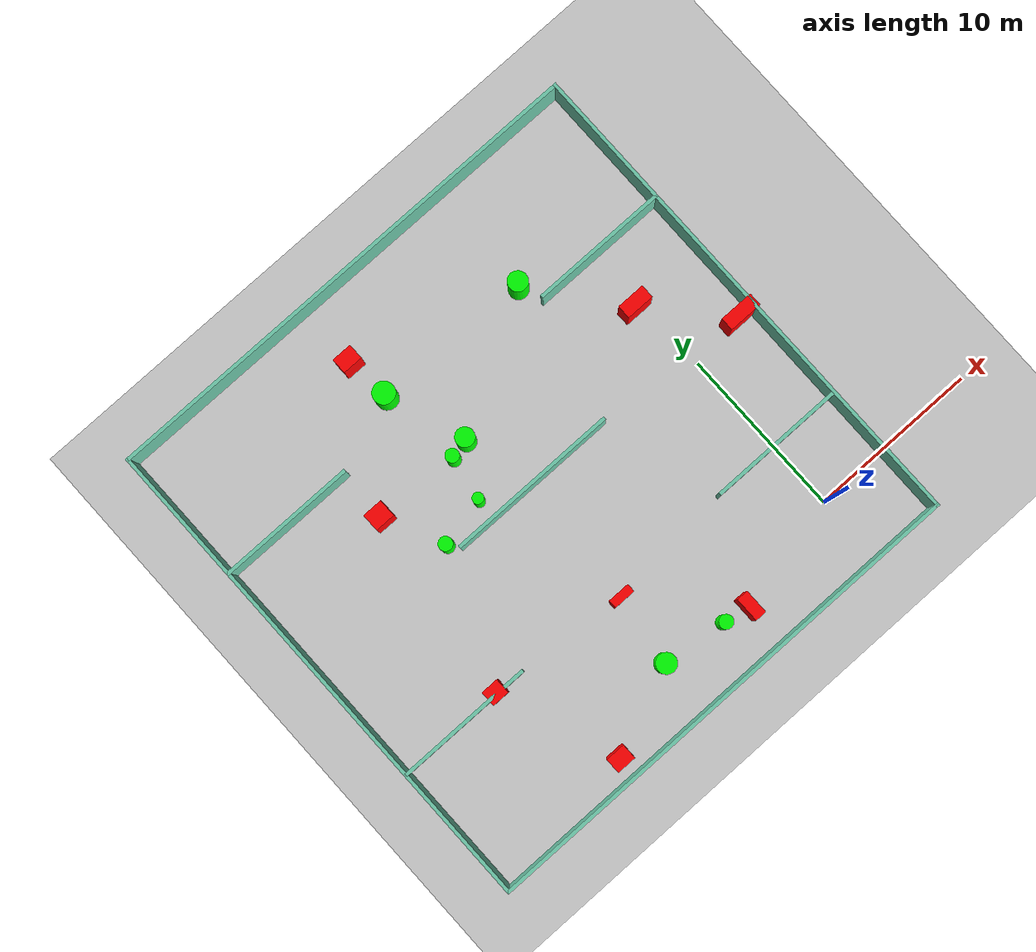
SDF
<sdf version="1.7">
 <world name="default">
  <light name="sun" type="directional">
   <pose>0 0 10 0 -0 0</pose>
   <diffuse>0.8 0.8 0.8 1</diffuse>
   <specular>0.2 0.2 0.2 1</specular>
   <attenuation>
    <range>1000</range>
    <constant>0.9</constant>
    <linear>0.01</linear>
    <quadratic>0.001</quadratic>
   </attenuation>
   <direction>-0.5 0.1 -0.9</direction>
   <spot><inner_angle>0</inner_angle><outer_angle>0</outer_angle><falloff>0</falloff></spot>
  </light>
  <model name="ground_plane">
   <static>1</static>
   <link name="link">
    <collision name="collision">
     <geometry><plane><normal>0 0 1</normal><size>100 100</size></plane></geometry>
     <surface>
      <contact><collide_bitmask>65535</collide_bitmask></contact>
      <friction><ode><mu>100</mu><mu2>50</mu2></ode></friction>
     </surface>
    </collision>
    <visual name="visual">
     <cast_shadows>0</cast_shadows>
     <geometry><plane><normal>0 0 1</normal><size>100 100</size></plane></geometry>
     <material>
      <script><uri>file://media/materials/scripts/gazebo.material</uri><name>Gazebo/Grey</name></script>
     </material>
    </visual>
   </link>
  </model>
  <gravity>0 0 -9.8</gravity>
  <magnetic_field>6e-06 2.3e-05 -4.2e-05</magnetic_field>
  <atmosphere type="adiabatic"/>
  <physics type="ode">
   <max_step_size>0.001</max_step_size>
   <real_time_factor>1</real_time_factor>
   <real_time_update_rate>1000</real_time_update_rate>
  </physics>
  <scene><ambient>0.4 0.4 0.4 1</ambient><background>0.7 0.7 0.7 1</background><shadows>1</shadows></scene>
  <spherical_coordinates>
   <surface_model>EARTH_WGS84</surface_model>
   <latitude_deg>0</latitude_deg>
   <longitude_deg>0</longitude_deg>
   <elevation>0</elevation>
   <heading_deg>0</heading_deg>
  </spherical_coordinates>
  <model name="my_base_walls">
   <link name="Wall_10">
    <collision name="Wall_10_Collision">
     <geometry><box><size>8.2 0.2 2.5</size></box></geometry>
     <pose>0 0 1.25 0 -0 0</pose>
    </collision>
    <visual name="Wall_10_Visual">
     <pose>0 0 1.25 0 -0 0</pose>
     <geometry><box><size>8.2 0.2 2.5</size></box></geometry>
     <material>
      <script><uri>file://media/materials/scripts/gazebo.material</uri><name>Gazebo/Grey</name></script>
      <ambient>0.435294 0.796078 0.67451 1</ambient>
     </material>
     <meta><layer>0</layer></meta>
    </visual>
    <pose>-11 -7 0 0 -0 0</pose>
   </link>
   <link name="Wall_12">
    <collision name="Wall_12_Collision">
     <geometry><box><size>8.2 0.2 2.5</size></box></geometry>
     <pose>0 0 1.25 0 -0 0</pose>
    </collision>
    <visual name="Wall_12_Visual">
     <pose>0 0 1.25 0 -0 0</pose>
     <geometry><box><size>8.2 0.2 2.5</size></box></geometry>
     <material>
      <script><uri>file://media/materials/scripts/gazebo.material</uri><name>Gazebo/Grey</name></script>
      <ambient>0.435294 0.796078 0.67451 1</ambient>
     </material>
     <meta><layer>0</layer></meta>
    </visual>
    <pose>-11 7 0 0 -0 0</pose>
   </link>
   <link name="Wall_14">
    <collision name="Wall_14_Collision">
     <geometry><box><size>8.2 0.2 2.5</size></box></geometry>
     <pose>0 0 1.25 0 -0 0</pose>
    </collision>
    <visual name="Wall_14_Visual">
     <pose>0 0 1.25 0 -0 0</pose>
     <geometry><box><size>8.2 0.2 2.5</size></box></geometry>
     <material>
      <script><uri>file://media/materials/scripts/gazebo.material</uri><name>Gazebo/Grey</name></script>
      <ambient>0.435294 0.796078 0.67451 1</ambient>
     </material>
     <meta><layer>0</layer></meta>
    </visual>
    <pose>11 7 0 0 -0 3.14159</pose>
   </link>
   <link name="Wall_16">
    <collision name="Wall_16_Collision">
     <geometry><box><size>10.2 0.2 2.5</size></box></geometry>
     <pose>0 0 1.25 0 -0 0</pose>
    </collision>
    <visual name="Wall_16_Visual">
     <pose>0 0 1.25 0 -0 0</pose>
     <geometry><box><size>10.2 0.2 2.5</size></box></geometry>
     <material>
      <script><uri>file://media/materials/scripts/gazebo.material</uri><name>Gazebo/Grey</name></script>
      <ambient>0.435294 0.796078 0.67451 1</ambient>
     </material>
     <meta><layer>0</layer></meta>
    </visual>
    <pose>0 0 0 0 -0 3.14159</pose>
   </link>
   <link name="Wall_2">
    <collision name="Wall_2_Collision">
     <geometry><box><size>30.2 0.2 2.5</size></box></geometry>
     <pose>0 0 1.25 0 -0 0</pose>
    </collision>
    <visual name="Wall_2_Visual">
     <pose>0 0 1.25 0 -0 0</pose>
     <geometry><box><size>30.2 0.2 2.5</size></box></geometry>
     <material>
      <script><uri>file://media/materials/scripts/gazebo.material</uri><name>Gazebo/Grey</name></script>
      <ambient>0.435294 0.796078 0.67451 1</ambient>
     </material>
     <meta><layer>0</layer></meta>
    </visual>
    <pose>0 -15 0 0 -0 3.14159</pose>
   </link>
   <link name="Wall_3">
    <collision name="Wall_3_Collision">
     <geometry><box><size>30.2 0.2 2.5</size></box></geometry>
     <pose>0 0 1.25 0 -0 0</pose>
    </collision>
    <visual name="Wall_3_Visual">
     <pose>0 0 1.25 0 -0 0</pose>
     <geometry><box><size>30.2 0.2 2.5</size></box></geometry>
     <material>
      <script><uri>file://media/materials/scripts/gazebo.material</uri><name>Gazebo/Grey</name></script>
      <ambient>0.435294 0.796078 0.67451 1</ambient>
     </material>
     <meta><layer>0</layer></meta>
    </visual>
    <pose>-15 0 0 0 -0 1.5708</pose>
   </link>
   <link name="Wall_4">
    <collision name="Wall_4_Collision">
     <geometry><box><size>30.2 0.2 2.5</size></box></geometry>
     <pose>0 0 1.25 0 -0 0</pose>
    </collision>
    <visual name="Wall_4_Visual">
     <pose>0 0 1.25 0 -0 0</pose>
     <geometry><box><size>30.2 0.2 2.5</size></box></geometry>
     <material>
      <script><uri>file://media/materials/scripts/gazebo.material</uri><name>Gazebo/Grey</name></script>
      <ambient>0.435294 0.796078 0.67451 1</ambient>
     </material>
     <meta><layer>0</layer></meta>
    </visual>
    <pose>0 15 0 0 -0 0</pose>
   </link>
   <link name="Wall_6">
    <collision name="Wall_6_Collision">
     <geometry><box><size>30.2 0.2 2.5</size></box></geometry>
     <pose>0 0 1.25 0 -0 0</pose>
    </collision>
    <visual name="Wall_6_Visual">
     <pose>0 0 1.25 0 -0 0</pose>
     <geometry><box><size>30.2 0.2 2.5</size></box></geometry>
     <material>
      <script><uri>file://media/materials/scripts/gazebo.material</uri><name>Gazebo/Grey</name></script>
      <ambient>0.435294 0.796078 0.67451 1</ambient>
     </material>
     <meta><layer>0</layer></meta>
    </visual>
    <pose>15 0 0 0 -0 1.5708</pose>
   </link>
   <link name="Wall_8">
    <collision name="Wall_8_Collision">
     <geometry><box><size>8.2 0.2 2.5</size></box></geometry>
     <pose>0 0 1.25 0 -0 0</pose>
    </collision>
    <visual name="Wall_8_Visual">
     <pose>0 0 1.25 0 -0 0</pose>
     <geometry><box><size>8.2 0.2 2.5</size></box></geometry>
     <material>
      <script><uri>file://media/materials/scripts/gazebo.material</uri><name>Gazebo/Grey</name></script>
      <ambient>0.435294 0.796078 0.67451 1</ambient>
     </material>
     <meta><layer>0</layer></meta>
    </visual>
    <pose>11 -7 0 0 -0 3.14159</pose>
   </link>
   <static>1</static>
   <pose>-11 11 0 0 -0 0</pose>
  </model>
  <model name="cylinder1">
   <static>1</static>
   <link name="link">
    <inertial>
     <mass>1</mass>
     <inertia><ixx>0.5</ixx><ixy>0</ixy><ixz>0</ixz><iyy>0.5</iyy><iyz>0</iyz><izz>1</izz></inertia>
    </inertial>
    <collision name="collision">
     <geometry><cylinder><radius>0.5782250724450853</radius><length>2.5</length></cylinder></geometry>
    </collision>
    <visual name="visual">
     <geometry><cylinder><radius>0.5782250724450853</radius><length>2.5</length></cylinder></geometry>
     <material>
      <ambient>0 1 0 1</ambient>
      <diffuse>0 1 0 1</diffuse>
      <specular>0.1 0.1 0.1 1</specular>
      <emissive>0 0 0 0</emissive>
     </material>
    </visual>
   </link>
   <pose>-4.488251910132293 19.451541845493153 1.25 0 0 0</pose>
  </model>
  <model name="cylinder2">
   <static>1</static>
   <link name="link">
    <inertial>
     <mass>1</mass>
     <inertia><ixx>0.5</ixx><ixy>0</ixy><ixz>0</ixz><iyy>0.5</iyy><iyz>0</iyz><izz>1</izz></inertia>
    </inertial>
    <collision name="collision">
     <geometry><cylinder><radius>0.32578391207388185</radius><length>2.5</length></cylinder></geometry>
    </collision>
    <visual name="visual">
     <geometry><cylinder><radius>0.32578391207388185</radius><length>2.5</length></cylinder></geometry>
     <material>
      <ambient>0 1 0 1</ambient>
      <diffuse>0 1 0 1</diffuse>
      <specular>0.1 0.1 0.1 1</specular>
      <emissive>0 0 0 0</emissive>
     </material>
    </visual>
   </link>
   <pose>-13.669274624693083 12.27372235964582 1.25 0 0 0</pose>
  </model>
  <model name="cylinder3">
   <static>1</static>
   <link name="link">
    <inertial>
     <mass>1</mass>
     <inertia><ixx>0.5</ixx><ixy>0</ixy><ixz>0</ixz><iyy>0.5</iyy><iyz>0</iyz><izz>1</izz></inertia>
    </inertial>
    <collision name="collision">
     <geometry><cylinder><radius>0.40622085350929904</radius><length>2.5</length></cylinder></geometry>
    </collision>
    <visual name="visual">
     <geometry><cylinder><radius>0.40622085350929904</radius><length>2.5</length></cylinder></geometry>
     <material>
      <ambient>0 1 0 1</ambient>
      <diffuse>0 1 0 1</diffuse>
      <specular>0.1 0.1 0.1 1</specular>
      <emissive>0 0 0 0</emissive>
     </material>
    </visual>
   </link>
   <pose>-16.520492290668418 11.620310474136458 1.25 0 0 0</pose>
  </model>
  <model name="cylinder4">
   <static>1</static>
   <link name="link">
    <inertial>
     <mass>1</mass>
     <inertia><ixx>0.5</ixx><ixy>0</ixy><ixz>0</ixz><iyy>0.5</iyy><iyz>0</iyz><izz>1</izz></inertia>
    </inertial>
    <collision name="collision">
     <geometry><cylinder><radius>0.3970496501098302</radius><length>2.5</length></cylinder></geometry>
    </collision>
    <visual name="visual">
     <geometry><cylinder><radius>0.3970496501098302</radius><length>2.5</length></cylinder></geometry>
     <material>
      <ambient>0 1 0 1</ambient>
      <diffuse>0 1 0 1</diffuse>
      <specular>0.1 0.1 0.1 1</specular>
      <emissive>0 0 0 0</emissive>
     </material>
    </visual>
   </link>
   <pose>-13.19084958025649 14.848918780572454 1.25 0 0 0</pose>
  </model>
  <model name="cylinder5">
   <static>1</static>
   <link name="link">
    <inertial>
     <mass>1</mass>
     <inertia><ixx>0.5</ixx><ixy>0</ixy><ixz>0</ixz><iyy>0.5</iyy><iyz>0</iyz><izz>1</izz></inertia>
    </inertial>
    <collision name="collision">
     <geometry><cylinder><radius>0.643294899079161</radius><length>2.5</length></cylinder></geometry>
    </collision>
    <visual name="visual">
     <geometry><cylinder><radius>0.643294899079161</radius><length>2.5</length></cylinder></geometry>
     <material>
      <ambient>0 1 0 1</ambient>
      <diffuse>0 1 0 1</diffuse>
      <specular>0.1 0.1 0.1 1</specular>
      <emissive>0 0 0 0</emissive>
     </material>
    </visual>
   </link>
   <pose>-13.678474036227602 19.71735118665937 1.25 0 0 0</pose>
  </model>
  <model name="cylinder6">
   <static>1</static>
   <link name="link">
    <inertial>
     <mass>1</mass>
     <inertia><ixx>0.5</ixx><ixy>0</ixy><ixz>0</ixz><iyy>0.5</iyy><iyz>0</iyz><izz>1</izz></inertia>
    </inertial>
    <collision name="collision">
     <geometry><cylinder><radius>0.4066917632468936</radius><length>2.5</length></cylinder></geometry>
    </collision>
    <visual name="visual">
     <geometry><cylinder><radius>0.4066917632468936</radius><length>2.5</length></cylinder></geometry>
     <material>
      <ambient>0 1 0 1</ambient>
      <diffuse>0 1 0 1</diffuse>
      <specular>0.1 0.1 0.1 1</specular>
      <emissive>0 0 0 0</emissive>
     </material>
    </visual>
   </link>
   <pose>-8.317072986156134 -1.1631993971590364 1.25 0 0 0</pose>
  </model>
  <model name="cylinder7">
   <static>1</static>
   <link name="link">
    <inertial>
     <mass>1</mass>
     <inertia><ixx>0.5</ixx><ixy>0</ixy><ixz>0</ixz><iyy>0.5</iyy><iyz>0</iyz><izz>1</izz></inertia>
    </inertial>
    <collision name="collision">
     <geometry><cylinder><radius>0.587141949505681</radius><length>2.5</length></cylinder></geometry>
    </collision>
    <visual name="visual">
     <geometry><cylinder><radius>0.587141949505681</radius><length>2.5</length></cylinder></geometry>
     <material>
      <ambient>0 1 0 1</ambient>
      <diffuse>0 1 0 1</diffuse>
      <specular>0.1 0.1 0.1 1</specular>
      <emissive>0 0 0 0</emissive>
     </material>
    </visual>
   </link>
   <pose>-12.076946033924784 -0.6952264987259462 1.25 0 0 0</pose>
  </model>
  <model name="cylinder8">
   <static>1</static>
   <link name="link">
    <inertial>
     <mass>1</mass>
     <inertia><ixx>0.5</ixx><ixy>0</ixy><ixz>0</ixz><iyy>0.5</iyy><iyz>0</iyz><izz>1</izz></inertia>
    </inertial>
    <collision name="collision">
     <geometry><cylinder><radius>0.5549257145121995</radius><length>2.5</length></cylinder></geometry>
    </collision>
    <visual name="visual">
     <geometry><cylinder><radius>0.5549257145121995</radius><length>2.5</length></cylinder></geometry>
     <material>
      <ambient>0 1 0 1</ambient>
      <diffuse>0 1 0 1</diffuse>
      <specular>0.1 0.1 0.1 1</specular>
      <emissive>0 0 0 0</emissive>
     </material>
    </visual>
   </link>
   <pose>-12.053716566734096 15.132878909193536 1.25 0 0 0</pose>
  </model>
  <model name="box1">
   <static>1</static>
   <link name="link">
    <inertial>
     <mass>1</mass>
     <inertia><ixx>0.083</ixx><ixy>0</ixy><ixz>0</ixz><iyy>0.083</iyy><iyz>0</iyz><izz>0.083</izz></inertia>
    </inertial>
    <collision name="collision">
     <geometry><box><size>2.009690528583587 0.78202661853723 2.5</size></box></geometry>
    </collision>
    <visual name="visual">
     <geometry><box><size>2.009690528583587 0.78202661853723 2.5</size></box></geometry>
     <material>
      <ambient>1 0 0 1</ambient>
      <diffuse>1 0 0 1</diffuse>
      <specular>0.1 0.1 0.1 1</specular>
      <emissive>0 0 0 0</emissive>
     </material>
    </visual>
    <sensor name="my_contact" type="contact">
     <contact><collision>box_collision</collision><topic>__default_topic__</topic></contact>
    </sensor>
   </link>
   <pose>3.1968681449767224 10.404832511412433 1.25 0 0 0</pose>
  </model>
  <model name="box2">
   <static>1</static>
   <link name="link">
    <inertial>
     <mass>1</mass>
     <inertia><ixx>0.083</ixx><ixy>0</ixy><ixz>0</ixz><iyy>0.083</iyy><iyz>0</iyz><izz>0.083</izz></inertia>
    </inertial>
    <collision name="collision">
     <geometry><box><size>1.6786066689195882 0.8014805653463701 2.5</size></box></geometry>
    </collision>
    <visual name="visual">
     <geometry><box><size>1.6786066689195882 0.8014805653463701 2.5</size></box></geometry>
     <material>
      <ambient>1 0 0 1</ambient>
      <diffuse>1 0 0 1</diffuse>
      <specular>0.1 0.1 0.1 1</specular>
      <emissive>0 0 0 0</emissive>
     </material>
    </visual>
    <sensor name="my_contact" type="contact">
     <contact><collision>box_collision</collision><topic>__default_topic__</topic></contact>
    </sensor>
   </link>
   <pose>-0.5889744267374653 14.505395199255826 1.25 0 0 0</pose>
  </model>
  <model name="box3">
   <static>1</static>
   <link name="link">
    <inertial>
     <mass>1</mass>
     <inertia><ixx>0.083</ixx><ixy>0</ixy><ixz>0</ixz><iyy>0.083</iyy><iyz>0</iyz><izz>0.083</izz></inertia>
    </inertial>
    <collision name="collision">
     <geometry><box><size>1.1599515410799315 0.9045256846410398 2.5</size></box></geometry>
    </collision>
    <visual name="visual">
     <geometry><box><size>1.1599515410799315 0.9045256846410398 2.5</size></box></geometry>
     <material>
      <ambient>1 0 0 1</ambient>
      <diffuse>1 0 0 1</diffuse>
      <specular>0.1 0.1 0.1 1</specular>
      <emissive>0 0 0 0</emissive>
     </material>
    </visual>
    <sensor name="my_contact" type="contact">
     <contact><collision>box_collision</collision><topic>__default_topic__</topic></contact>
    </sensor>
   </link>
   <pose>-17.13814499014868 -2.7859298665649885 1.25 0 0 0</pose>
  </model>
  <model name="box4">
   <static>1</static>
   <link name="link">
    <inertial>
     <mass>1</mass>
     <inertia><ixx>0.083</ixx><ixy>0</ixy><ixz>0</ixz><iyy>0.083</iyy><iyz>0</iyz><izz>0.083</izz></inertia>
    </inertial>
    <collision name="collision">
     <geometry><box><size>1.2006804203119215 0.9136683719769365 2.5</size></box></geometry>
    </collision>
    <visual name="visual">
     <geometry><box><size>1.2006804203119215 0.9136683719769365 2.5</size></box></geometry>
     <material>
      <ambient>1 0 0 1</ambient>
      <diffuse>1 0 0 1</diffuse>
      <specular>0.1 0.1 0.1 1</specular>
      <emissive>0 0 0 0</emissive>
     </material>
    </visual>
    <sensor name="my_contact" type="contact">
     <contact><collision>box_collision</collision><topic>__default_topic__</topic></contact>
    </sensor>
   </link>
   <pose>-13.92257030033314 22.34424233659925 1.25 0 0 0</pose>
  </model>
  <model name="box5">
   <static>1</static>
   <link name="link">
    <inertial>
     <mass>1</mass>
     <inertia><ixx>0.083</ixx><ixy>0</ixy><ixz>0</ixz><iyy>0.083</iyy><iyz>0</iyz><izz>0.083</izz></inertia>
    </inertial>
    <collision name="collision">
     <geometry><box><size>0.6831213035786206 1.4670206003679005 2.5</size></box></geometry>
    </collision>
    <visual name="visual">
     <geometry><box><size>0.6831213035786206 1.4670206003679005 2.5</size></box></geometry>
     <material>
      <ambient>1 0 0 1</ambient>
      <diffuse>1 0 0 1</diffuse>
      <specular>0.1 0.1 0.1 1</specular>
      <emissive>0 0 0 0</emissive>
     </material>
    </visual>
    <sensor name="my_contact" type="contact">
     <contact><collision>box_collision</collision><topic>__default_topic__</topic></contact>
    </sensor>
   </link>
   <pose>-6.77382404305887 -1.4307342103154275 1.25 0 0 0</pose>
  </model>
  <model name="box6">
   <static>1</static>
   <link name="link">
    <inertial>
     <mass>1</mass>
     <inertia><ixx>0.083</ixx><ixy>0</ixy><ixz>0</ixz><iyy>0.083</iyy><iyz>0</iyz><izz>0.083</izz></inertia>
    </inertial>
    <collision name="collision">
     <geometry><box><size>1.3050928172896956 0.5064988163128085 2.5</size></box></geometry>
    </collision>
    <visual name="visual">
     <geometry><box><size>1.3050928172896956 0.5064988163128085 2.5</size></box></geometry>
     <material>
      <ambient>1 0 0 1</ambient>
      <diffuse>1 0 0 1</diffuse>
      <specular>0.1 0.1 0.1 1</specular>
      <emissive>0 0 0 0</emissive>
     </material>
    </visual>
    <sensor name="my_contact" type="contact">
     <contact><collision>box_collision</collision><topic>__default_topic__</topic></contact>
    </sensor>
   </link>
   <pose>-11.48042238523744 3.4564917010361818 1.25 0 0 0</pose>
  </model>
  <model name="box7">
   <static>1</static>
   <link name="link">
    <inertial>
     <mass>1</mass>
     <inertia><ixx>0.083</ixx><ixy>0</ixy><ixz>0</ixz><iyy>0.083</iyy><iyz>0</iyz><izz>0.083</izz></inertia>
    </inertial>
    <collision name="collision">
     <geometry><box><size>1.03663183187551 0.9138365376054978 2.5</size></box></geometry>
    </collision>
    <visual name="visual">
     <geometry><box><size>1.03663183187551 0.9138365376054978 2.5</size></box></geometry>
     <material>
      <ambient>1 0 0 1</ambient>
      <diffuse>1 0 0 1</diffuse>
      <specular>0.1 0.1 0.1 1</specular>
      <emissive>0 0 0 0</emissive>
     </material>
    </visual>
    <sensor name="my_contact" type="contact">
     <contact><collision>box_collision</collision><topic>__default_topic__</topic></contact>
    </sensor>
   </link>
   <pose>-19.727297574983268 4.105822023687129 1.25 0 0 0</pose>
  </model>
  <model name="box8">
   <static>1</static>
   <link name="link">
    <inertial>
     <mass>1</mass>
     <inertia><ixx>0.083</ixx><ixy>0</ixy><ixz>0</ixz><iyy>0.083</iyy><iyz>0</iyz><izz>0.083</izz></inertia>
    </inertial>
    <collision name="collision">
     <geometry><box><size>1.1902859013589335 1.0449253288672629 2.5</size></box></geometry>
    </collision>
    <visual name="visual">
     <geometry><box><size>1.1902859013589335 1.0449253288672629 2.5</size></box></geometry>
     <material>
      <ambient>1 0 0 1</ambient>
      <diffuse>1 0 0 1</diffuse>
      <specular>0.1 0.1 0.1 1</specular>
      <emissive>0 0 0 0</emissive>
     </material>
    </visual>
    <sensor name="my_contact" type="contact">
     <contact><collision>box_collision</collision><topic>__default_topic__</topic></contact>
    </sensor>
   </link>
   <pose>-18.142568538621305 15.051760422992366 1.25 0 0 0</pose>
  </model>
 </world>
</sdf>
